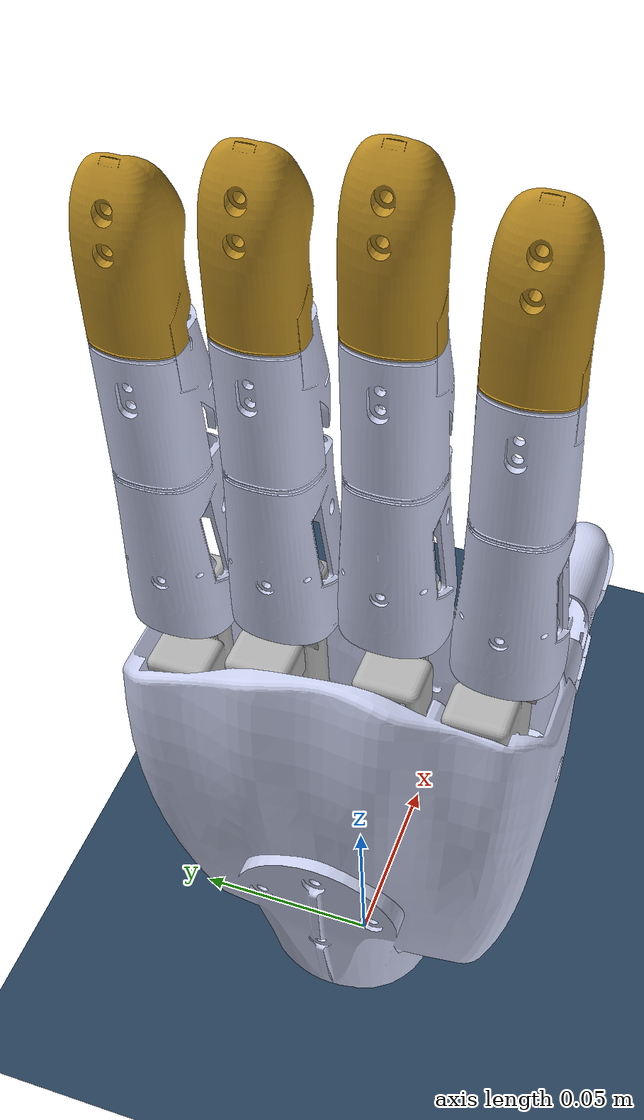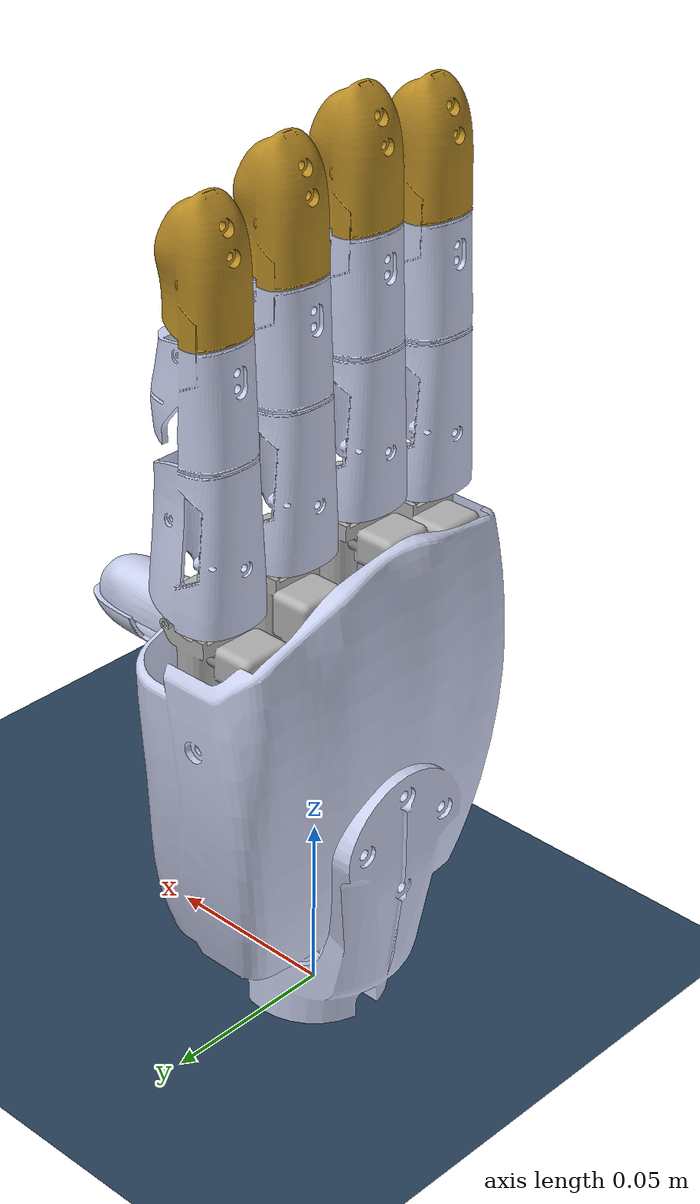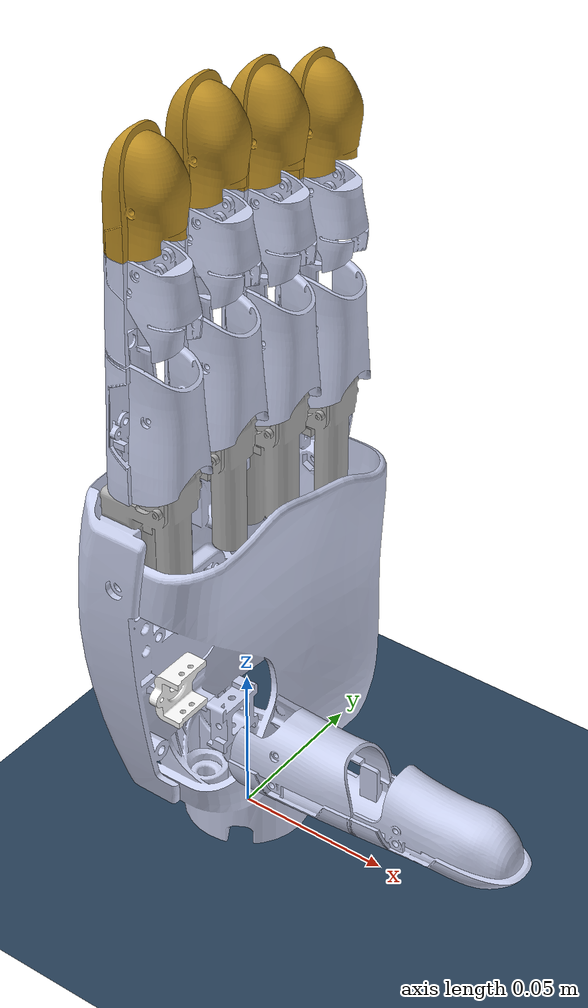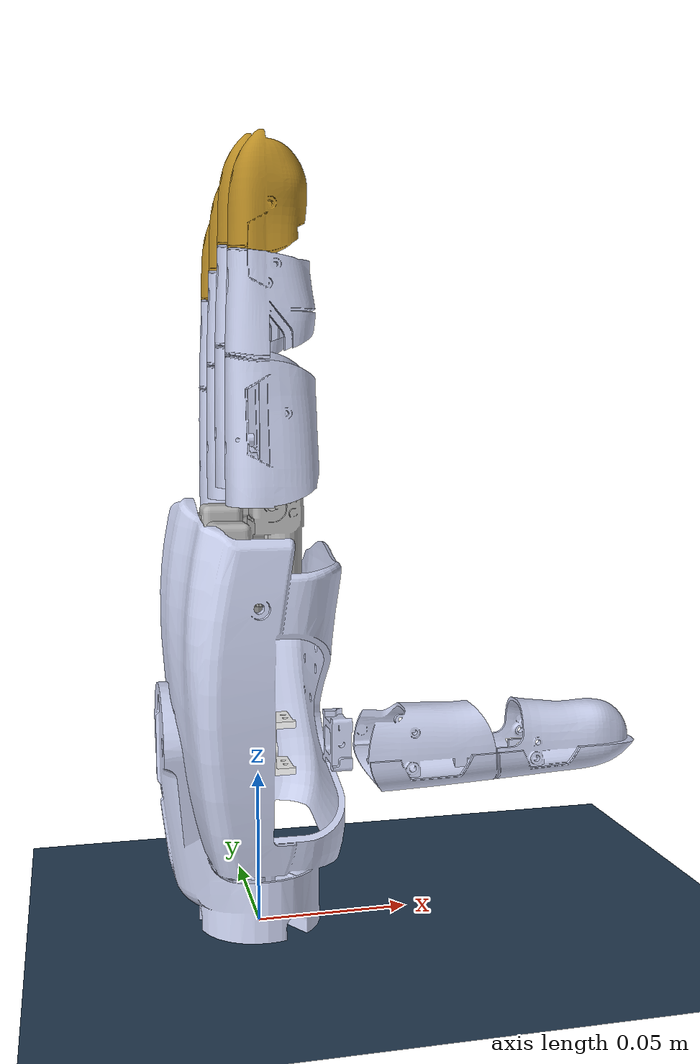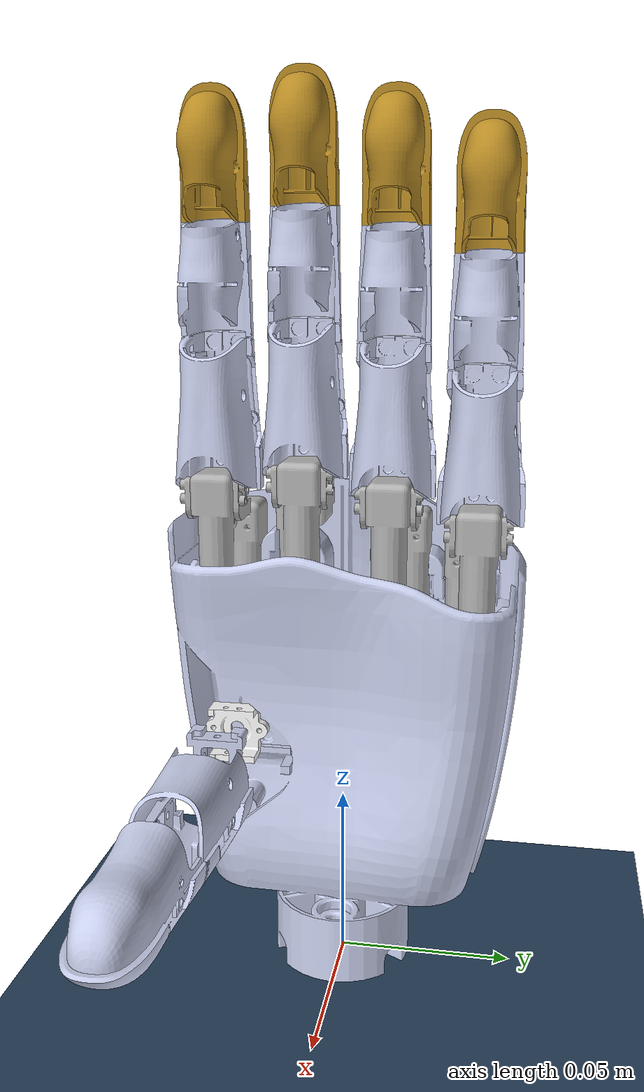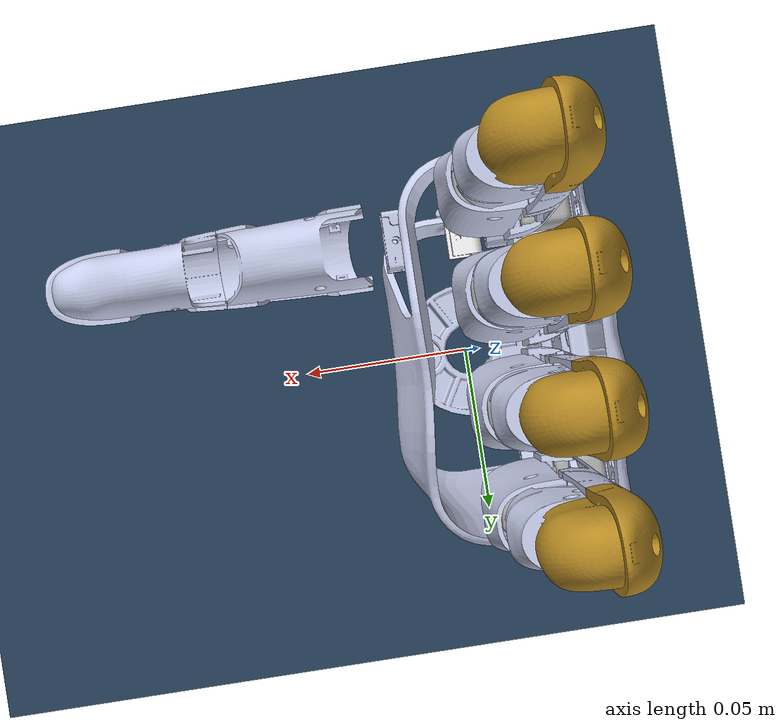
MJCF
<?xml version='1.0' encoding='utf-8'?>
<mujoco model="gaiahand20_left">
  <compiler angle="radian" meshdir="." autolimits="true" inertiafromgeom="false" />
  <option timestep="0.002" gravity="0 0 0" integrator="implicitfast" />
  <statistic center="0 0 0.075" extent="0.22" />
  <visual>
    <global offwidth="1280" offheight="1280" />
    <quality shadowsize="4096" />
  </visual>
  <default>
    <joint damping="0.08" armature="0.0001" limited="true" />
    <geom type="mesh" contype="0" conaffinity="0" group="1" density="0" />
    <position kp="8" kv="0.3" ctrllimited="true" />
  </default>
  <asset>
    <texture type="skybox" builtin="gradient" rgb1="0.3 0.5 0.7" rgb2="0 0 0" width="512" height="3072" />
    <texture type="2d" name="groundplane" builtin="checker" mark="edge" rgb1="0.2 0.3 0.4" rgb2="0.1 0.2 0.3" markrgb="0.8 0.8 0.8" width="300" height="300" />
    <material name="groundplane" texture="groundplane" texuniform="true" texrepeat="5 5" reflectance="0.2" />
    <mesh name="left_base_link_mesh" file="meshes/left/left_base_link.STL" />
    <mesh name="left_thumb_link_1_mesh" file="meshes/left/left_thumb_link_1.STL" />
    <mesh name="left_thumb_link_2_mesh" file="meshes/left/left_thumb_link_2.STL" />
    <mesh name="left_thumb_link_3_mesh" file="meshes/left/left_thumb_link_3.STL" />
    <mesh name="left_thumb_link_4_mesh" file="meshes/left/left_thumb_link_4.STL" />
    <mesh name="left_index_link_1_mesh" file="meshes/left/left_index_link_1.STL" />
    <mesh name="left_index_link_2_mesh" file="meshes/left/left_index_link_2.STL" />
    <mesh name="left_index_link_3_mesh" file="meshes/left/left_index_link_3.STL" />
    <mesh name="left_index_link_4_mesh" file="meshes/left/left_index_link_4.STL" />
    <mesh name="left_middle_link_1_mesh" file="meshes/left/left_middle_link_1.STL" />
    <mesh name="left_middle_link_2_mesh" file="meshes/left/left_middle_link_2.STL" />
    <mesh name="left_middle_link_3_mesh" file="meshes/left/left_middle_link_3.STL" />
    <mesh name="left_middle_link_4_mesh" file="meshes/left/left_middle_link_4.STL" />
    <mesh name="left_ring_link_1_mesh" file="meshes/left/left_ring_link_1.STL" />
    <mesh name="left_ring_link_2_mesh" file="meshes/left/left_ring_link_2.STL" />
    <mesh name="left_ring_link_3_mesh" file="meshes/left/left_ring_link_3.STL" />
    <mesh name="left_ring_link_4_mesh" file="meshes/left/left_ring_link_4.STL" />
    <mesh name="left_little_link_1_mesh" file="meshes/left/left_little_link_1.STL" />
    <mesh name="left_little_link_2_mesh" file="meshes/left/left_little_link_2.STL" />
    <mesh name="left_little_link_3_mesh" file="meshes/left/left_little_link_3.STL" />
    <mesh name="left_little_link_4_mesh" file="meshes/left/left_little_link_4.STL" />
  </asset>
  <worldbody>
    <light pos="0 0 1.5" dir="0 0 -1" directional="true" />
    <light pos="0.5 0.5 1" dir="-0.5 -0.5 -1" />
    <geom name="floor" pos="0 0 -0.001" size="0 0 0.05" type="plane" material="groundplane" />
    <body name="left_base_link">
      <geom name="left_base_link_visual" mesh="left_base_link_mesh" rgba="0.792156862745098 0.819607843137255 0.933333333333333 1" />
      <body name="left_thumb_link_1" pos="-0.012686 -0.032394 0.06846" quat="0.00017288067122 -0.707106759408 0.000178075367534 -0.707106759408">
        <inertial pos="-4.45425113837147E-06 2.73197841531986E-05 0.0126698081457872" mass="0.00215958911797" diaginertia="1e-07 1e-07 1.11057014172e-07" />
        <joint name="left_thumb_joint_1" type="hinge" axis="0 0 1" range="-0.7 0.7" />
        <geom name="left_thumb_link_1_visual" mesh="left_thumb_link_1_mesh" rgba="1 1 1 1" />
        <body name="left_thumb_link_2" pos="0 0 0.02255" quat="-2.59734346696e-06 0.707105482506 2.59735300756e-06 0.707108079855">
          <inertial pos="0.01 1.38777878078145E-17 3.46944695195361E-18" mass="0.00190392221156" diaginertia="1e-07 1e-07 1e-07" />
          <joint name="left_thumb_joint_2" type="hinge" axis="0 0 1" range="-1 1.5" />
          <geom name="left_thumb_link_2_visual" mesh="left_thumb_link_2_mesh" rgba="0.792156862745098 0.819607843137255 0.933333333333333 1" />
          <body name="left_thumb_link_3" pos="0.02 0 0" quat="0.707105482511 0.707108079859 0 0">
            <inertial pos="0.0194250949317203 -0.00575056850276964 1.15613549579036E-06" mass="0.00347675744561" diaginertia="2.82115220622e-07 6.68708023956e-07 5.05040324243e-07" />
            <joint name="left_thumb_joint_3" type="hinge" axis="0 0 1" range="0 1.5" />
            <geom name="left_thumb_link_3_visual" mesh="left_thumb_link_3_mesh" rgba="0.792156862745098 0.819607843137255 0.933333333333333 1" />
            <body name="left_thumb_link_4" pos="0.0437 0 0">
              <inertial pos="0.020352767593123 -0.00513863221873198 -5.06281622906363E-07" mass="0.00332864524929" diaginertia="1.69927280978e-07 6.88956967522e-07 6.08520223543e-07" />
              <joint name="left_thumb_joint_4" type="hinge" axis="0 0 1" range="0 1.5" />
              <geom name="left_thumb_link_4_visual" mesh="left_thumb_link_4_mesh" rgba="0.792156862745098 0.819607843137255 0.933333333333333 1" />
              <body name="left_thumb_tip" pos="0.041 0 0" />
            </body>
          </body>
        </body>
      </body>
      <body name="left_index_link_1" pos="-0.0014859 -0.035855 0.13061" quat="0.00017288067122 -0.707106759408 0.000178075367534 -0.707106759408">
        <inertial pos="-4.85722573273506E-17 -6.93889390390723E-18 -0.00398398682166268" mass="0.000282122826671" diaginertia="1e-07 1e-07 1e-07" />
        <joint name="left_index_joint_1" type="hinge" axis="0 0 1" range="-0.7 0.34" />
        <geom name="left_index_link_1_visual" mesh="left_index_link_1_mesh" rgba="0.698039215686274 0.698039215686274 0.698039215686274 1" />
        <body name="left_index_link_2" pos="0.0105 0 0" quat="0.707105482511 0.707108079859 0 0">
          <inertial pos="0.0209410264860948 -0.000898698179335078 4.14835501227895E-07" mass="0.00316302771885" diaginertia="2.30919426587e-07 6.18115773333e-07 4.98047054758e-07" />
          <joint name="left_index_joint_2" type="hinge" axis="0 0 1" range="0 1.5" />
          <geom name="left_index_link_2_visual" mesh="left_index_link_2_mesh" rgba="0.792156862745098 0.819607843137255 0.933333333333333 1" />
          <body name="left_index_link_3" pos="0.0489 0.00312 0">
            <inertial pos="0.0107721571396885 -0.00317608053119267 -4.12749758746389E-08" mass="0.00243281058534" diaginertia="1.35089165012e-07 2.28255754535e-07 1.7129392611e-07" />
            <joint name="left_index_joint_3" type="hinge" axis="0 0 1" range="0 1.5" />
            <geom name="left_index_link_3_visual" mesh="left_index_link_3_mesh" rgba="0.792156862745098 0.819607843137255 0.933333333333333 1" />
            <body name="left_index_link_4" pos="0.03 0 0">
              <inertial pos="0.00934458303737801 -0.00489105678300095 -2.23737680528358E-07" mass="0.00276527786017" diaginertia="1.19031041443e-07 3.10610144953e-07 2.54740669247e-07" />
              <joint name="left_index_joint_4" type="hinge" axis="0 0 1" range="0 1.5708" />
              <geom name="left_index_link_4_visual" mesh="left_index_link_4_mesh" rgba="0.729411764705882 0.552941176470588 0.145098039215686 1" />
              <body name="left_index_tip" pos="0.028 0 0" />
            </body>
          </body>
        </body>
      </body>
      <body name="left_middle_link_1" pos="-0.0014859 -0.011303 0.1346" quat="0.00017288067122 -0.707106759408 0.000178075367534 -0.707106759408">
        <inertial pos="-6.93889390390723E-18 2.51534904016637E-17 -0.00398398682166312" mass="0.000282122826671" diaginertia="1e-07 1e-07 1e-07" />
        <joint name="left_middle_joint_1" type="hinge" axis="0 0 1" range="-0.523 0.523" />
        <geom name="left_middle_link_1_visual" mesh="left_middle_link_1_mesh" rgba="0.698039215686274 0.698039215686274 0.698039215686274 1" />
        <body name="left_middle_link_2" pos="0.0105 0 0" quat="0.707105482511 0.707108079859 0 0">
          <inertial pos="0.0209410264860953 -0.000898698179337076 4.38904648095324E-07" mass="0.00316302771885" diaginertia="2.30919426587e-07 6.18115773334e-07 4.98047054759e-07" />
          <joint name="left_middle_joint_2" type="hinge" axis="0 0 1" range="0 1.5" />
          <geom name="left_middle_link_2_visual" mesh="left_middle_link_2_mesh" rgba="0.792156862745098 0.819607843137255 0.933333333333333 1" />
          <body name="left_middle_link_3" pos="0.0489 0.00312 0">
            <inertial pos="0.0107721572423141 -0.00317608021815707 -1.68172914292303E-08" mass="0.00243281059098" diaginertia="1.35089161452e-07 2.28255745793e-07 1.71293926737e-07" />
            <joint name="left_middle_joint_3" type="hinge" axis="0 0 1" range="0 1.5" />
            <geom name="left_middle_link_3_visual" mesh="left_middle_link_3_mesh" rgba="0.792156862745098 0.819607843137255 0.933333333333333 1" />
            <body name="left_middle_link_4" pos="0.03 0 0">
              <inertial pos="0.00934458303736932 -0.00489105678300072 -1.99668531155554E-07" mass="0.00276527786017" diaginertia="1.19031041443e-07 3.10610144953e-07 2.54740669247e-07" />
              <joint name="left_middle_joint_4" type="hinge" axis="0 0 1" range="0 1.5708" />
              <geom name="left_middle_link_4_visual" mesh="left_middle_link_4_mesh" rgba="0.729411764705882 0.552941176470588 0.145098039215686 1" />
              <body name="left_middle_tip" pos="0.028 0 0" />
            </body>
          </body>
        </body>
      </body>
      <body name="left_ring_link_1" pos="-0.0014859 0.013189 0.12958" quat="0.00017288067122 -0.707106759408 0.000178075367534 -0.707106759408">
        <inertial pos="1.38777878078145E-17 -4.85722573273506E-17 -0.00398398682166268" mass="0.000282122826671" diaginertia="1e-07 1e-07 1e-07" />
        <joint name="left_ring_joint_1" type="hinge" axis="0 0 1" range="-0.349 0.61" />
        <geom name="left_ring_link_1_visual" mesh="left_ring_link_1_mesh" rgba="0.698039215686274 0.698039215686274 0.698039215686274 1" />
        <body name="left_ring_link_2" pos="0.0105 0 0" quat="0.707105482511 0.707108079859 0 0">
          <inertial pos="0.020941026486081 -0.000898698179364388 4.3890465183799E-07" mass="0.00316302771886" diaginertia="2.30919426588e-07 6.18115773334e-07 4.9804705476e-07" />
          <joint name="left_ring_joint_2" type="hinge" axis="0 0 1" range="0 1.5" />
          <geom name="left_ring_link_2_visual" mesh="left_ring_link_2_mesh" rgba="0.792156862745098 0.819607843137255 0.933333333333333 1" />
          <body name="left_ring_link_3" pos="0.0489 0.00312 0">
            <inertial pos="0.0107721570262131 -0.00317607941965603 -1.71308353752453E-08" mass="0.00243281077425" diaginertia="1.3508917029e-07 2.28255753425e-07 1.7129393549e-07" />
            <joint name="left_ring_joint_3" type="hinge" axis="0 0 1" range="0 1.5" />
            <geom name="left_ring_link_3_visual" mesh="left_ring_link_3_mesh" rgba="0.792156862745098 0.819607843137255 0.933333333333333 1" />
            <body name="left_ring_link_4" pos="0.03 0 0">
              <inertial pos="0.00934458374253974 -0.0048910569075713 -2.00143561397692E-07" mass="0.00276527757404" diaginertia="1.19031026808e-07 3.10610143624e-07 2.54740668263e-07" />
              <joint name="left_ring_joint_4" type="hinge" axis="0 0 1" range="0 1.5708" />
              <geom name="left_ring_link_4_visual" mesh="left_ring_link_4_mesh" rgba="0.729411764705882 0.552941176470588 0.145098039215686 1" />
              <body name="left_ring_tip" pos="0.028 0 0" />
            </body>
          </body>
        </body>
      </body>
      <body name="left_little_link_1" pos="-0.0014859 0.037596 0.12257" quat="0.00017288067122 -0.707106759408 0.000178075367534 -0.707106759408">
        <inertial pos="1.83880688453542E-16 1.59594559789866E-16 -0.0039839868216629" mass="0.000282122826671" diaginertia="1e-07 1e-07 1e-07" />
        <joint name="left_little_joint_1" type="hinge" axis="0 0 1" range="-0.698 0" />
        <geom name="left_little_link_1_visual" mesh="left_little_link_1_mesh" rgba="0.698039215686274 0.698039215686274 0.698039215686274 1" />
        <body name="left_little_link_2" pos="0.0105 0 0" quat="0.707105482511 0.707108079859 0 0">
          <inertial pos="0.0209410264860816 -0.0008986981793635 4.38904652261263E-07" mass="0.00316302771886" diaginertia="2.30919426588e-07 6.18115773334e-07 4.9804705476e-07" />
          <joint name="left_little_joint_2" type="hinge" axis="0 0 1" range="0 1.5" />
          <geom name="left_little_link_2_visual" mesh="left_little_link_2_mesh" rgba="0.792156862745098 0.819607843137255 0.933333333333333 1" />
          <body name="left_little_link_3" pos="0.0489 0.00312 0">
            <inertial pos="0.0107721571371943 -0.00317608051353124 -1.72046493648881E-08" mass="0.00243281058916" diaginertia="1.35089165136e-07 2.2825575459e-07 1.71293926248e-07" />
            <joint name="left_little_joint_3" type="hinge" axis="0 0 1" range="0 1.5" />
            <geom name="left_little_link_3_visual" mesh="left_little_link_3_mesh" rgba="0.792156862745098 0.819607843137255 0.933333333333333 1" />
            <body name="left_little_link_4" pos="0.03 0 0">
              <inertial pos="0.00934458303737884 -0.00489105678299984 -1.99668530709296E-07" mass="0.00276527786017" diaginertia="1.19031041443e-07 3.10610144953e-07 2.54740669247e-07" />
              <joint name="left_little_joint_4" type="hinge" axis="0 0 1" range="0 1.5708" />
              <geom name="left_little_link_4_visual" mesh="left_little_link_4_mesh" rgba="0.729411764705882 0.552941176470588 0.145098039215686 1" />
              <body name="left_little_tip" pos="0.028 0 0" />
            </body>
          </body>
        </body>
      </body>
    </body>
  </worldbody>
  <actuator>
    <position name="left_thumb_joint_1_actuator" joint="left_thumb_joint_1" ctrlrange="-0.7 0.7" />
    <position name="left_thumb_joint_2_actuator" joint="left_thumb_joint_2" ctrlrange="-1 1.5" />
    <position name="left_thumb_joint_3_actuator" joint="left_thumb_joint_3" ctrlrange="0 1.5" />
    <position name="left_thumb_joint_4_actuator" joint="left_thumb_joint_4" ctrlrange="0 1.5" />
    <position name="left_index_joint_1_actuator" joint="left_index_joint_1" ctrlrange="-0.7 0.34" />
    <position name="left_index_joint_2_actuator" joint="left_index_joint_2" ctrlrange="0 1.5" />
    <position name="left_index_joint_3_actuator" joint="left_index_joint_3" ctrlrange="0 1.5" />
    <position name="left_index_joint_4_actuator" joint="left_index_joint_4" ctrlrange="0 1.5708" />
    <position name="left_middle_joint_1_actuator" joint="left_middle_joint_1" ctrlrange="-0.523 0.523" />
    <position name="left_middle_joint_2_actuator" joint="left_middle_joint_2" ctrlrange="0 1.5" />
    <position name="left_middle_joint_3_actuator" joint="left_middle_joint_3" ctrlrange="0 1.5" />
    <position name="left_middle_joint_4_actuator" joint="left_middle_joint_4" ctrlrange="0 1.5708" />
    <position name="left_ring_joint_1_actuator" joint="left_ring_joint_1" ctrlrange="-0.349 0.61" />
    <position name="left_ring_joint_2_actuator" joint="left_ring_joint_2" ctrlrange="0 1.5" />
    <position name="left_ring_joint_3_actuator" joint="left_ring_joint_3" ctrlrange="0 1.5" />
    <position name="left_ring_joint_4_actuator" joint="left_ring_joint_4" ctrlrange="0 1.5708" />
    <position name="left_little_joint_1_actuator" joint="left_little_joint_1" ctrlrange="-0.698 0" />
    <position name="left_little_joint_2_actuator" joint="left_little_joint_2" ctrlrange="0 1.5" />
    <position name="left_little_joint_3_actuator" joint="left_little_joint_3" ctrlrange="0 1.5" />
    <position name="left_little_joint_4_actuator" joint="left_little_joint_4" ctrlrange="0 1.5708" />
  </actuator>
  <equality>
    <joint name="left_index_joint_4_mimic" joint1="left_index_joint_4" joint2="left_index_joint_3" polycoef="0 1 0 0 0" solref="0.004 1" />
    <joint name="left_middle_joint_4_mimic" joint1="left_middle_joint_4" joint2="left_middle_joint_3" polycoef="0 1 0 0 0" solref="0.004 1" />
    <joint name="left_ring_joint_4_mimic" joint1="left_ring_joint_4" joint2="left_ring_joint_3" polycoef="0 1 0 0 0" solref="0.004 1" />
    <joint name="left_little_joint_4_mimic" joint1="left_little_joint_4" joint2="left_little_joint_3" polycoef="0 1 0 0 0" solref="0.004 1" />
  </equality>
</mujoco>
